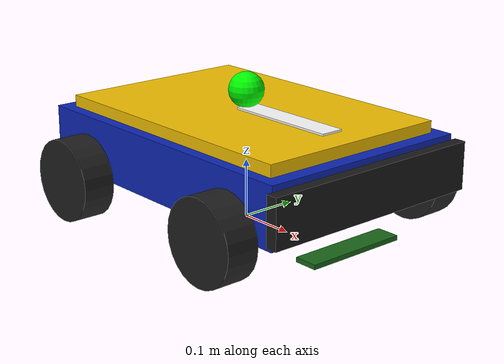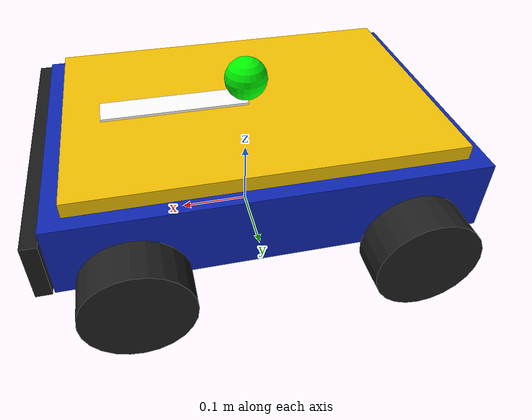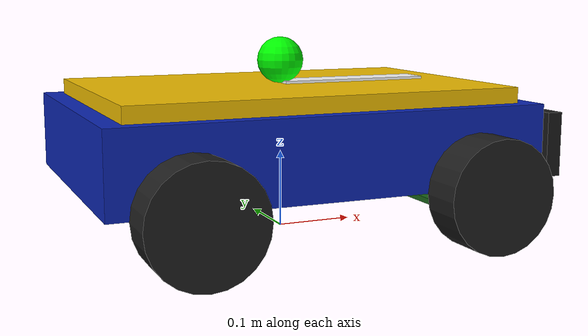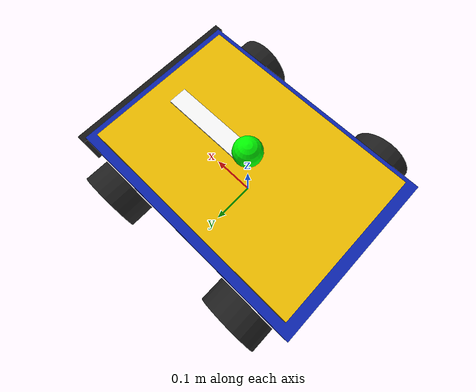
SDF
<?xml version="1.0"?>
<sdf version="1.7">
  <model name="agv_robot">
    <static>false</static>

    <!-- ═══ CHASSIS ════════════════════════════════════════════════════ -->
    <link name="base_link">
      <pose>0 0 0.12 0 0 0</pose>
      <inertial>
        <mass>15.0</mass>
        <inertia>
          <ixx>0.4</ixx><ixy>0</ixy><ixz>0</ixz>
          <iyy>0.6</iyy><iyz>0</iyz>
          <izz>0.8</izz>
        </inertia>
      </inertial>
      <!-- Main body — blue box -->
      <collision name="chassis_col">
        <geometry><box><size>0.55 0.38 0.10</size></box></geometry>
      </collision>
      <visual name="chassis_vis">
        <geometry><box><size>0.55 0.38 0.10</size></box></geometry>
        <material>
          <ambient>0.05 0.15 0.7 1</ambient>
          <diffuse>0.05 0.15 0.7 1</diffuse>
        </material>
      </visual>
      <!-- Yellow top plate -->
      <visual name="top_plate">
        <pose>0 0 0.06 0 0 0</pose>
        <geometry><box><size>0.50 0.34 0.02</size></box></geometry>
        <material>
          <ambient>0.95 0.75 0.0 1</ambient>
          <diffuse>0.95 0.75 0.0 1</diffuse>
          <emissive>0.3 0.2 0.0 1</emissive>
        </material>
      </visual>
      <!-- Black front bumper -->
      <visual name="bumper_front">
        <pose>0.285 0 0 0 0 0</pose>
        <geometry><box><size>0.02 0.40 0.08</size></box></geometry>
        <material><ambient>0.1 0.1 0.1 1</ambient></material>
      </visual>
      <!-- Arrow indicator on top (white strip pointing forward) -->
      <visual name="arrow">
        <pose>0.10 0 0.071 0 0 0</pose>
        <geometry><box><size>0.20 0.04 0.005</size></box></geometry>
        <material>
          <ambient>1 1 1 1</ambient><diffuse>1 1 1 1</diffuse>
          <emissive>0.5 0.5 0.5 1</emissive>
        </material>
      </visual>
    </link>

    <!-- ═══ FRONT-LEFT WHEEL ══════════════════════════════════════════ -->
    <!-- Pose: x=+0.18 (front), y=+0.21 (left), z=0.07 (wheel radius)  -->
    <!-- Roll -90° so positive DiffDrive commands roll the robot forward. -->
    <link name="wheel_fl">
      <pose>0.18 0.22 0.07 -1.5708 0 0</pose>
      <inertial>
        <mass>1.5</mass>
        <inertia><ixx>0.003</ixx><ixy>0</ixy><ixz>0</ixz>
                 <iyy>0.003</iyy><iyz>0</iyz><izz>0.005</izz></inertia>
      </inertial>
      <collision name="col">
        <geometry><cylinder><radius>0.07</radius><length>0.055</length></cylinder></geometry>
        <surface><friction><ode><mu>1.5</mu><mu2>1.5</mu2></ode></friction></surface>
      </collision>
      <!-- Tyre — dark grey -->
      <visual name="tyre">
        <geometry><cylinder><radius>0.07</radius><length>0.055</length></cylinder></geometry>
        <material><ambient>0.12 0.12 0.12 1</ambient><diffuse>0.12 0.12 0.12 1</diffuse></material>
      </visual>
      <!-- Orange marker half — rotation indicator -->
      <visual name="marker_a">
        <pose>0 0 0.001 0 0 0</pose>
        <geometry><box><size>0.072 0.058 0.002</size></box></geometry>
        <material><ambient>1.0 0.45 0.0 1</ambient><diffuse>1.0 0.45 0.0 1</diffuse><emissive>0.4 0.2 0.0 1</emissive></material>
      </visual>
      <!-- White marker strip perpendicular -->
      <visual name="marker_b">
        <pose>0 0 0.001 0 0 1.5708</pose>
        <geometry><box><size>0.072 0.015 0.003</size></box></geometry>
        <material><ambient>1 1 1 1</ambient><diffuse>1 1 1 1</diffuse><emissive>0.5 0.5 0.5 1</emissive></material>
      </visual>
    </link>
    <joint name="joint_wheel_fl" type="revolute">
      <parent>base_link</parent><child>wheel_fl</child>
      <axis>
        <xyz>0 0 1</xyz>
        <limit><lower>-1e16</lower><upper>1e16</upper></limit>
        <dynamics><damping>0.01</damping><friction>0.01</friction></dynamics>
      </axis>
    </joint>

    <!-- ═══ FRONT-RIGHT WHEEL ═════════════════════════════════════════ -->
    <link name="wheel_fr">
      <pose>0.18 -0.22 0.07 -1.5708 0 0</pose>
      <inertial>
        <mass>1.5</mass>
        <inertia><ixx>0.003</ixx><ixy>0</ixy><ixz>0</ixz>
                 <iyy>0.003</iyy><iyz>0</iyz><izz>0.005</izz></inertia>
      </inertial>
      <collision name="col">
        <geometry><cylinder><radius>0.07</radius><length>0.055</length></cylinder></geometry>
        <surface><friction><ode><mu>1.5</mu><mu2>1.5</mu2></ode></friction></surface>
      </collision>
      <visual name="tyre">
        <geometry><cylinder><radius>0.07</radius><length>0.055</length></cylinder></geometry>
        <material><ambient>0.12 0.12 0.12 1</ambient><diffuse>0.12 0.12 0.12 1</diffuse></material>
      </visual>
      <visual name="marker_a">
        <pose>0 0 0.001 0 0 0</pose>
        <geometry><box><size>0.072 0.058 0.002</size></box></geometry>
        <material><ambient>1.0 0.45 0.0 1</ambient><diffuse>1.0 0.45 0.0 1</diffuse><emissive>0.4 0.2 0.0 1</emissive></material>
      </visual>
      <visual name="marker_b">
        <pose>0 0 0.001 0 0 1.5708</pose>
        <geometry><box><size>0.072 0.015 0.003</size></box></geometry>
        <material><ambient>1 1 1 1</ambient><diffuse>1 1 1 1</diffuse><emissive>0.5 0.5 0.5 1</emissive></material>
      </visual>
    </link>
    <joint name="joint_wheel_fr" type="revolute">
      <parent>base_link</parent><child>wheel_fr</child>
      <axis>
        <xyz>0 0 1</xyz>
        <limit><lower>-1e16</lower><upper>1e16</upper></limit>
        <dynamics><damping>0.01</damping><friction>0.01</friction></dynamics>
      </axis>
    </joint>

    <!-- ═══ REAR-LEFT WHEEL (passive) ════════════════════════════════ -->
    <link name="wheel_rl">
      <pose>-0.18 0.22 0.07 -1.5708 0 0</pose>
      <inertial>
        <mass>1.5</mass>
        <inertia><ixx>0.003</ixx><ixy>0</ixy><ixz>0</ixz>
                 <iyy>0.003</iyy><iyz>0</iyz><izz>0.005</izz></inertia>
      </inertial>
      <collision name="col">
        <geometry><cylinder><radius>0.07</radius><length>0.055</length></cylinder></geometry>
        <surface><friction><ode><mu>1.5</mu><mu2>1.5</mu2></ode></friction></surface>
      </collision>
      <visual name="tyre">
        <geometry><cylinder><radius>0.07</radius><length>0.055</length></cylinder></geometry>
        <material><ambient>0.12 0.12 0.12 1</ambient><diffuse>0.12 0.12 0.12 1</diffuse></material>
      </visual>
      <visual name="marker_a">
        <pose>0 0 0.001 0 0 0</pose>
        <geometry><box><size>0.072 0.058 0.002</size></box></geometry>
        <material><ambient>1.0 0.45 0.0 1</ambient><diffuse>1.0 0.45 0.0 1</diffuse><emissive>0.4 0.2 0.0 1</emissive></material>
      </visual>
      <visual name="marker_b">
        <pose>0 0 0.001 0 0 1.5708</pose>
        <geometry><box><size>0.072 0.015 0.003</size></box></geometry>
        <material><ambient>1 1 1 1</ambient><diffuse>1 1 1 1</diffuse><emissive>0.5 0.5 0.5 1</emissive></material>
      </visual>
    </link>
    <joint name="joint_wheel_rl" type="revolute">
      <parent>base_link</parent><child>wheel_rl</child>
      <axis>
        <xyz>0 0 1</xyz>
        <limit><lower>-1e16</lower><upper>1e16</upper></limit>
        <dynamics><damping>0.01</damping><friction>0.01</friction></dynamics>
      </axis>
    </joint>

    <!-- ═══ REAR-RIGHT WHEEL (passive) ═══════════════════════════════ -->
    <link name="wheel_rr">
      <pose>-0.18 -0.22 0.07 -1.5708 0 0</pose>
      <inertial>
        <mass>1.5</mass>
        <inertia><ixx>0.003</ixx><ixy>0</ixy><ixz>0</ixz>
                 <iyy>0.003</iyy><iyz>0</iyz><izz>0.005</izz></inertia>
      </inertial>
      <collision name="col">
        <geometry><cylinder><radius>0.07</radius><length>0.055</length></cylinder></geometry>
        <surface><friction><ode><mu>1.5</mu><mu2>1.5</mu2></ode></friction></surface>
      </collision>
      <visual name="tyre">
        <geometry><cylinder><radius>0.07</radius><length>0.055</length></cylinder></geometry>
        <material><ambient>0.12 0.12 0.12 1</ambient><diffuse>0.12 0.12 0.12 1</diffuse></material>
      </visual>
      <visual name="marker_a">
        <pose>0 0 0.001 0 0 0</pose>
        <geometry><box><size>0.072 0.058 0.002</size></box></geometry>
        <material><ambient>1.0 0.45 0.0 1</ambient><diffuse>1.0 0.45 0.0 1</diffuse><emissive>0.4 0.2 0.0 1</emissive></material>
      </visual>
      <visual name="marker_b">
        <pose>0 0 0.001 0 0 1.5708</pose>
        <geometry><box><size>0.072 0.015 0.003</size></box></geometry>
        <material><ambient>1 1 1 1</ambient><diffuse>1 1 1 1</diffuse><emissive>0.5 0.5 0.5 1</emissive></material>
      </visual>
    </link>
    <joint name="joint_wheel_rr" type="revolute">
      <parent>base_link</parent><child>wheel_rr</child>
      <axis>
        <xyz>0 0 1</xyz>
        <limit><lower>-1e16</lower><upper>1e16</upper></limit>
        <dynamics><damping>0.01</damping><friction>0.01</friction></dynamics>
      </axis>
    </joint>

    <!-- ═══ IR SENSOR BAR (5-LED array, front underside, facing floor) ══ -->
    <link name="ir_bar">
      <pose>0.24 0 0.015 0 0 0</pose>
      <inertial><mass>0.02</mass>
        <inertia><ixx>0.00001</ixx><ixy>0</ixy><ixz>0</ixz>
                 <iyy>0.00001</iyy><iyz>0</iyz><izz>0.00001</izz></inertia>
      </inertial>
      <!-- PCB bar -->
      <visual name="pcb">
        <geometry><box><size>0.04 0.18 0.008</size></box></geometry>
        <material><ambient>0.1 0.4 0.1 1</ambient><diffuse>0.1 0.4 0.1 1</diffuse></material>
      </visual>
      <!-- LED 1 -->
      <visual name="led1"><pose>0 -0.07 -0.005 0 0 0</pose>
        <geometry><sphere><radius>0.007</radius></sphere></geometry>
        <material><ambient>1 0 0 1</ambient><emissive>0.8 0 0 1</emissive></material></visual>
      <!-- LED 2 -->
      <visual name="led2"><pose>0 -0.035 -0.005 0 0 0</pose>
        <geometry><sphere><radius>0.007</radius></sphere></geometry>
        <material><ambient>1 0 0 1</ambient><emissive>0.8 0 0 1</emissive></material></visual>
      <!-- LED 3 centre -->
      <visual name="led3"><pose>0 0 -0.005 0 0 0</pose>
        <geometry><sphere><radius>0.007</radius></sphere></geometry>
        <material><ambient>1 0.5 0 1</ambient><emissive>0.8 0.4 0 1</emissive></material></visual>
      <!-- LED 4 -->
      <visual name="led4"><pose>0 0.035 -0.005 0 0 0</pose>
        <geometry><sphere><radius>0.007</radius></sphere></geometry>
        <material><ambient>1 0 0 1</ambient><emissive>0.8 0 0 1</emissive></material></visual>
      <!-- LED 5 -->
      <visual name="led5"><pose>0 0.07 -0.005 0 0 0</pose>
        <geometry><sphere><radius>0.007</radius></sphere></geometry>
        <material><ambient>1 0 0 1</ambient><emissive>0.8 0 0 1</emissive></material></visual>
    </link>
    <joint name="ir_bar_joint" type="fixed">
      <parent>base_link</parent><child>ir_bar</child>
    </joint>

    <!-- ═══ STATUS BEACON (green emissive sphere on top) ══════════════ -->
    <link name="beacon">
      <pose>0 0 0.22 0 0 0</pose>
      <inertial><mass>0.05</mass>
        <inertia><ixx>0.00001</ixx><ixy>0</ixy><ixz>0</ixz>
                 <iyy>0.00001</iyy><iyz>0</iyz><izz>0.00001</izz></inertia>
      </inertial>
      <visual name="vis">
        <geometry><sphere><radius>0.03</radius></sphere></geometry>
        <material>
          <ambient>0.0 1.0 0.0 1</ambient>
          <diffuse>0.0 1.0 0.0 1</diffuse>
          <emissive>0.0 0.9 0.0 1</emissive>
        </material>
      </visual>
    </link>
    <joint name="beacon_joint" type="fixed">
      <parent>base_link</parent><child>beacon</child>
    </joint>

    <plugin filename="ignition-gazebo-diff-drive-system"
            name="ignition::gazebo::systems::DiffDrive">
      <left_joint>joint_wheel_fl</left_joint>
      <right_joint>joint_wheel_fr</right_joint>
      <wheel_separation>0.44</wheel_separation>
      <wheel_radius>0.07</wheel_radius>
      <odom_publish_frequency>20</odom_publish_frequency>
      <frame_id>odom</frame_id>
      <child_frame_id>base_link</child_frame_id>
      <max_linear_acceleration>2.0</max_linear_acceleration>
      <max_angular_acceleration>2.0</max_angular_acceleration>
      <min_velocity>-2.0</min_velocity>
      <max_velocity>2.0</max_velocity>
    </plugin>

  </model>
</sdf>
